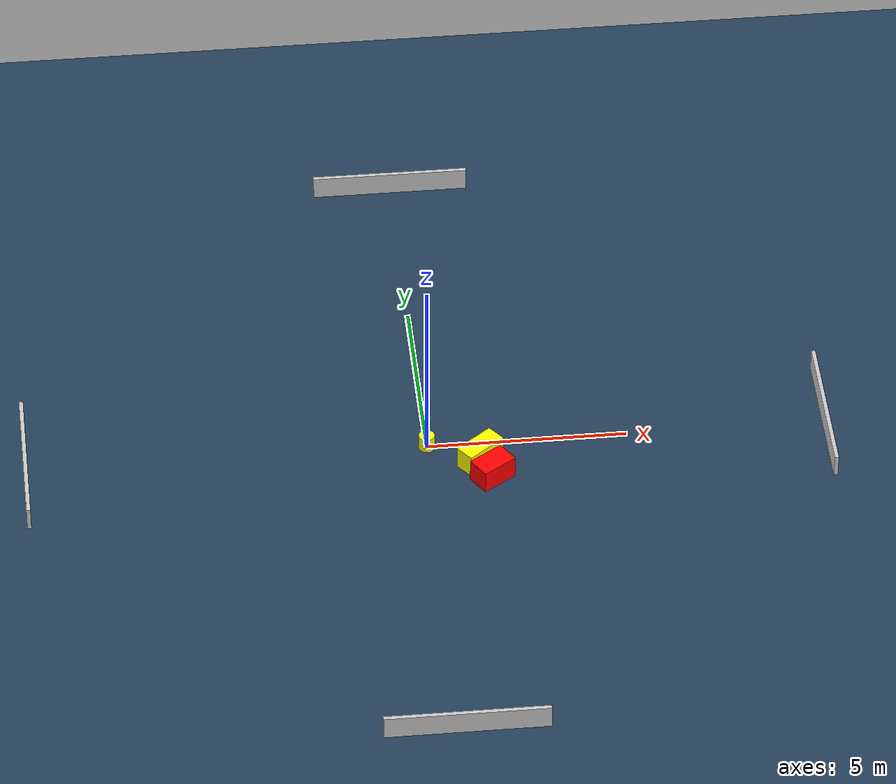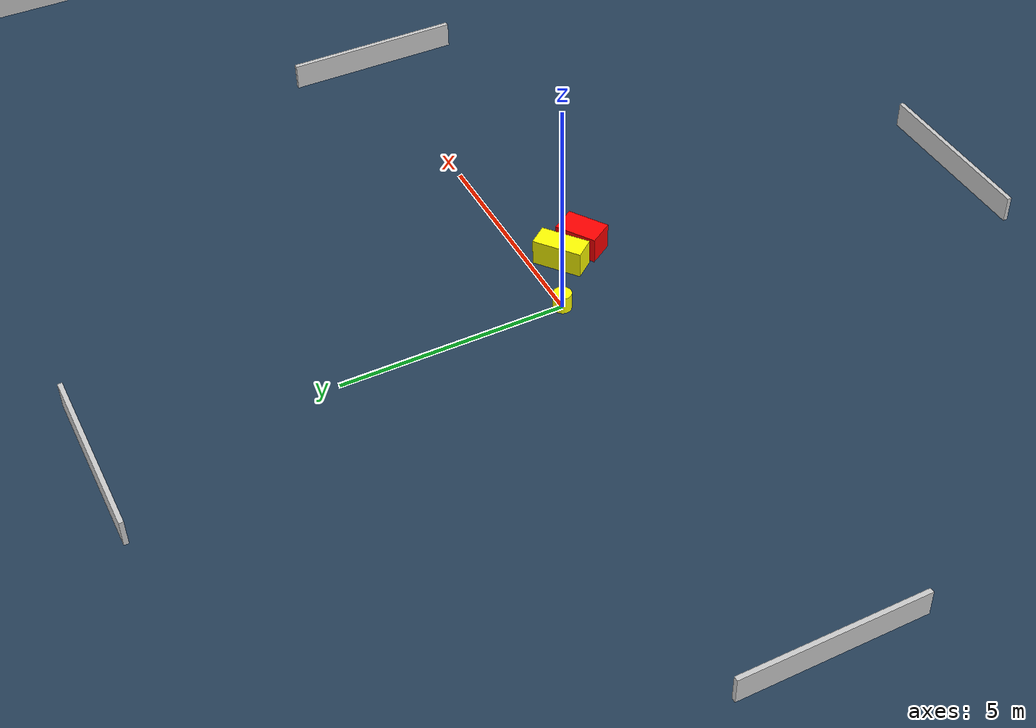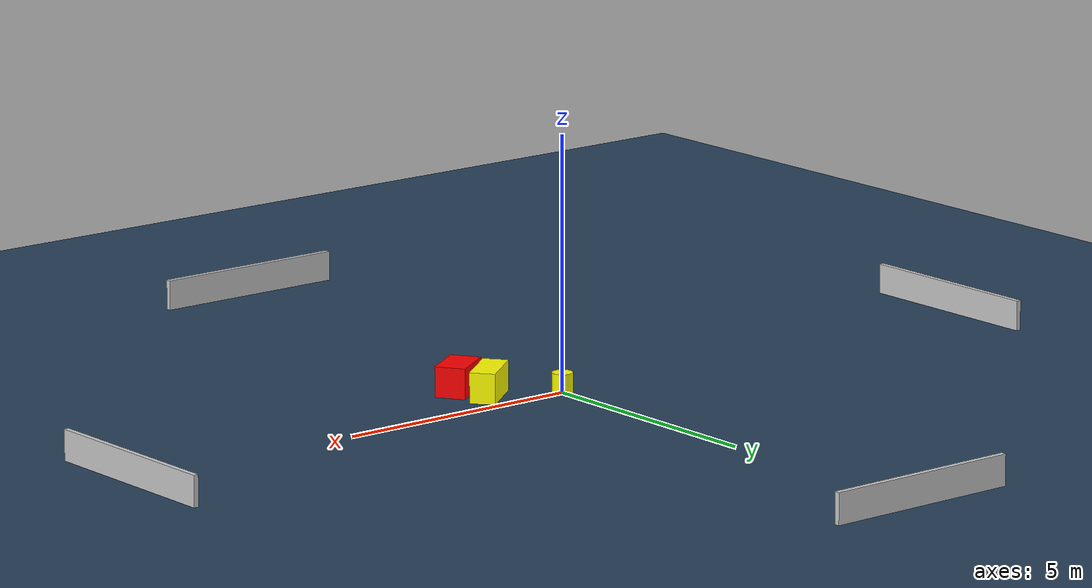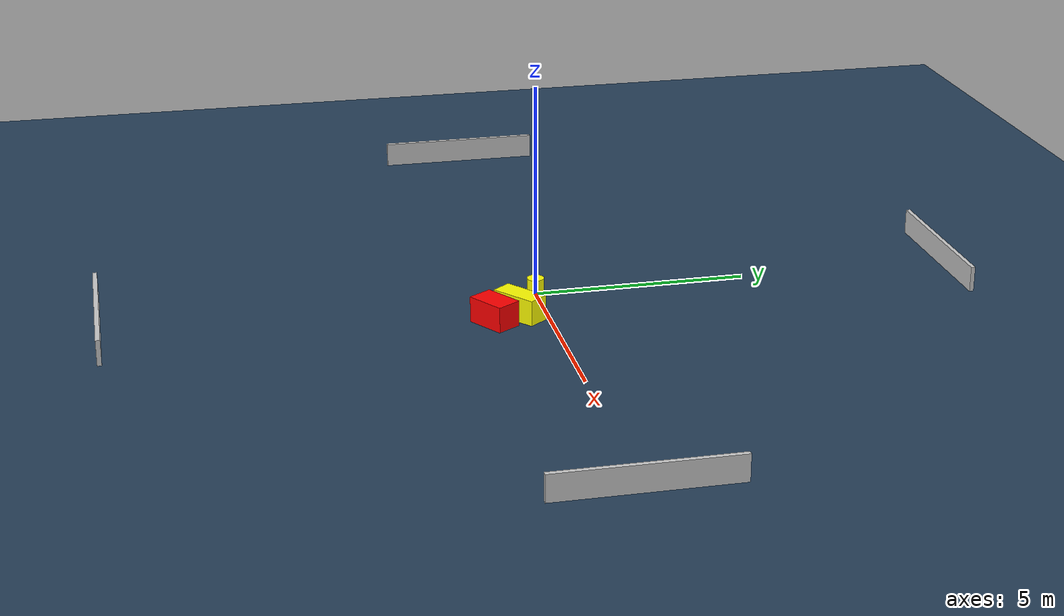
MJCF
<?xml version="1.0" ?>
<mujoco model="generated_environment">
  <option timestep="0.01" integrator="RK4" cone="elliptic"/>
  <default>
    <geom density="1"/>
  </default>
  <asset>
    <texture builtin="gradient" height="3072" name="skybox" rgb1="0.3 0.5 0.7" rgb2="0 0 0" type="skybox" width="512"/>
    <texture builtin="checker" height="300" name="groundplane" rgb1="0.2 0.3 0.4" rgb2="0.1 0.2 0.3" type="2d" width="300"/>
    <material name="groundplane" reflectance="0.2" texrepeat="5 5" texture="groundplane"/>
  </asset>
  <worldbody>
    <light dir="0 0 -1" directional="true" pos="0 0 1.5"/>
    <geom condim="3" friction="0.5 0.005 0.001" material="groundplane" name="floor" pos="0 0 0" size="0 0 0.05" type="plane"/>
    <body name="walls">
      <geom name="wall_1" condim="4" pos="-10.0 0.0 0.3" rgba="0.800000011920929 0.800000011920929 0.800000011920929 1.0" size="0.05 2.0 0.3" type="box"/>
      <geom name="wall_2" condim="4" pos="10.0 0.0 0.3" rgba="0.800000011920929 0.800000011920929 0.800000011920929 1.0" size="0.05 2.0 0.3" type="box"/>
      <geom name="wall_3" condim="4" pos="0.0 -10.0 0.3" rgba="0.800000011920929 0.800000011920929 0.800000011920929 1.0" size="2.0 0.05 0.3" type="box"/>
      <geom name="wall_4" condim="4" pos="0.0 10.0 0.3" rgba="0.800000011920929 0.800000011920929 0.800000011920929 1.0" size="2.0 0.05 0.3" type="box"/>
    </body>
    <body name="robot">
      <joint name="joint_x" type="slide" pos="0 0 0" axis="1 0 0"/>
      <joint name="joint_y" type="slide" pos="0 0 0" axis="0 1 0"/>
      <geom name="robot" type="cylinder" pos="0.0 0.0 0.2" size="0.2 0.2 0.0" mass="5.0" friction="1.0 0.005 0.0001" condim="4" rgba="1.0 1.0 0.0 1.0"/>
    </body>
    <body name="obstacle_1_movable">
      <geom name="obstacle_1_movable" condim="4" pos="1.2733046038231848 -0.6346291419905767 0.3" euler="0 0 218.17089059654162" friction="0.0 0.005 0.001" rgba="1.0 1.0 0.0 1.0" size="0.554200358927974 0.2503325362235448 0.3" type="box" mass="0.1"/>
      <joint type="free"/>
    </body>
    <body name="obstacle_2_static">
      <geom name="obstacle_2_static" condim="4" pos="1.5211699466387372 -1.268382715725458 0.3" euler="0 0 123.04443693705242" friction="0.0 0.005 0.001" rgba="1.0 0.0 0.0 1.0" size="0.3027431106953508 0.4762641439232516 0.3" type="box"/>
    </body>
  </worldbody>
  <actuator>
    <motor name="actuator_x" joint="joint_x" gear="1" ctrlrange="-1 1"/>
    <motor name="actuator_y" joint="joint_y" gear="1" ctrlrange="-1 1"/>
  </actuator>
</mujoco>
